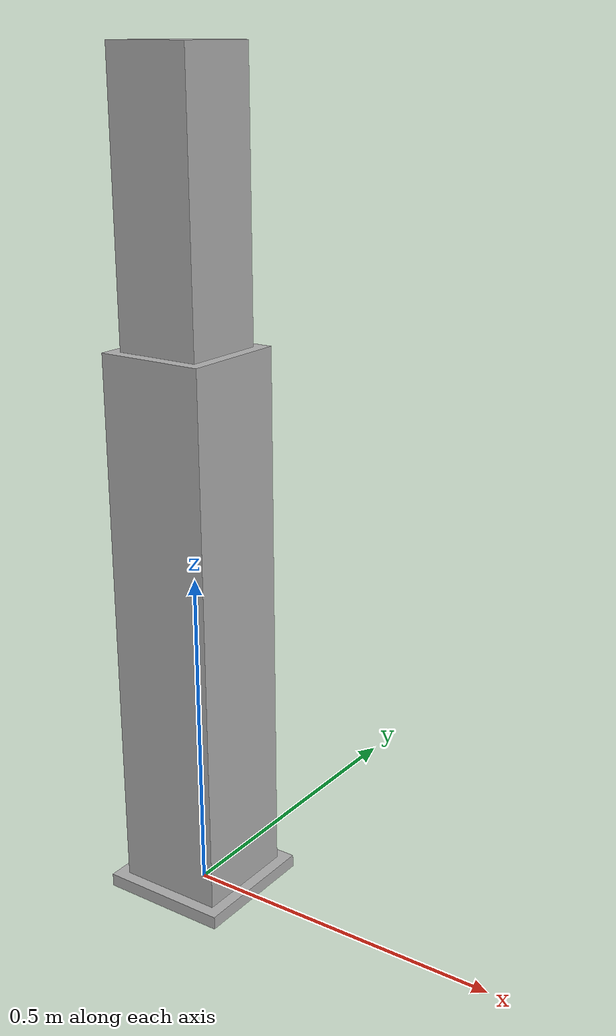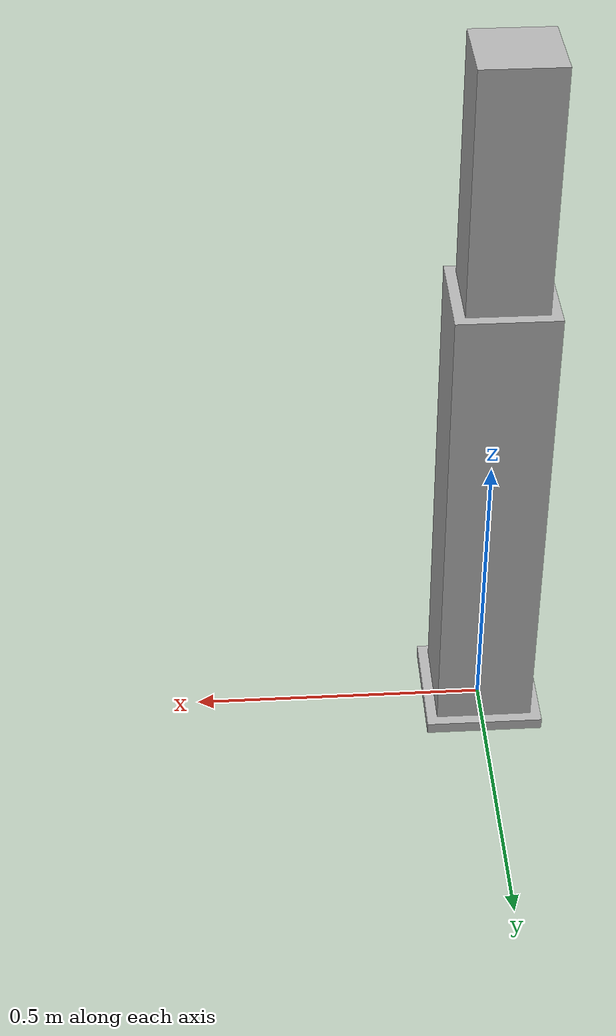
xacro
<?xml version="1.0"?>
<robot xmlns:xacro="http://www.ros.org/wiki/xacro" name="lc3_column">

    <xacro:arg name="use_mock_hardware" default="false"/>
    <xacro:arg name="simulation" default="false"/>

    <!-- Base link-->
    <link name="base_link">
        <visual>
            <geometry>
                <box size="0.2 0.2 0.02"/>
            </geometry>
            <origin xyz="0 0 0.01" rpy="0 0 0"/>
            <material name="light_gray">
                <color rgba="0.7 0.7 0.7 1"/>
            </material>
        </visual>
        <visual>
            <geometry>
                <box size="0.164 0.164 0.82"/>
            </geometry>
            <origin xyz="0 0 0.43" rpy="0 0 0"/>
            <material name="light_gray">
                <color rgba="0.7 0.7 0.7 1"/>
            </material>
        </visual>
        <collision>
            <geometry>
                <box size="0.164 0.164 0.84"/>
            </geometry>
            <origin xyz="0 0 0.42" rpy="0 0 0"/>
        </collision>
        <inertial>
            <mass value="10.0"/>
            <inertia ixx="0.2" ixy="0.0" ixz="0.0" iyy="0.2" iyz="0.0" izz="0.03"/>
        </inertial>
    </link>

    <!-- Column link -->
    <link name="column_link">
        <visual>
            <geometry>
                <box size="0.148 0.148 0.80"/>
            </geometry>
            <origin xyz="0 0 0.40" rpy="0 0 0"/>
            <material name="light_gray">
                <color rgba="0.7 0.7 0.7 1"/>
            </material>
        </visual>
        <visual>
            <geometry>
                <box size="0.129 0.129 0.84"/>
            </geometry>
            <origin xyz="0 0 0.82" rpy="0 0 0"/>
            <material name="light_gray">
                <color rgba="0.7 0.7 0.7 1"/>
            </material>
        </visual>
        <collision>
            <geometry>
                <box size="0.148 0.148 1.24"/>
            </geometry>
            <origin xyz="0 0 0.62" rpy="0 0 0"/>
        </collision>
        <inertial>
            <mass value="10.0"/>
            <origin xyz="0 0 0.62" rpy="0 0 0"/>
            <inertia ixx="0.12" ixy="0.0" ixz="0.0" iyy="0.12" iyz="0.0" izz="0.02"/>
        </inertial>
    </link>

    <!-- Prismatic joint for column -->
    <joint name="column_joint" type="prismatic">
        <origin xyz="0 0 0" rpy="0 0 0"/>
        <parent link="base_link"/>
        <child link="column_link"/>
        <axis xyz="0 0 1"/>
        <limit lower="0.0" upper="0.9" effort="1000.0" velocity="0.1"/>
        <dynamics damping="10.0" friction="1.0"/>
    </joint>

    <!-- ros2_control hardware interface -->
    <ros2_control name="lc3_column_controller" type="system">
        <xacro:unless value="$(arg simulation)">
            <xacro:unless value="$(arg use_mock_hardware)">
                <hardware>
                    <plugin>lc3_hw_interface/LC3HardwareInterface</plugin>
                    <param name="column_name">column_joint</param>
                </hardware>
            </xacro:unless>
            <xacro:if value="$(arg use_mock_hardware)">
                <hardware>
                    <plugin>mock_components/GenericSystem</plugin>
                    <param name="calculate_dynamics">true</param>
                </hardware>
            </xacro:if>
        </xacro:unless>

        <xacro:if value="$(arg simulation)">
            <hardware>
                <plugin>gazebo_ros2_control/GazeboSystem</plugin>
            </hardware>
        </xacro:if>

        <joint name="column_joint">
            <command_interface name="position"/>
            <state_interface name="position"/>
        </joint>
    </ros2_control>

</robot>
